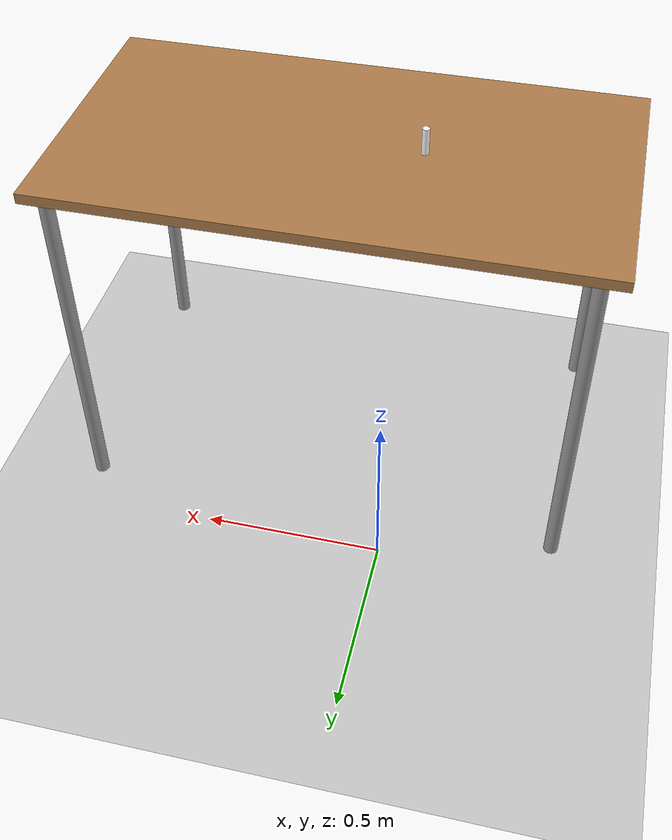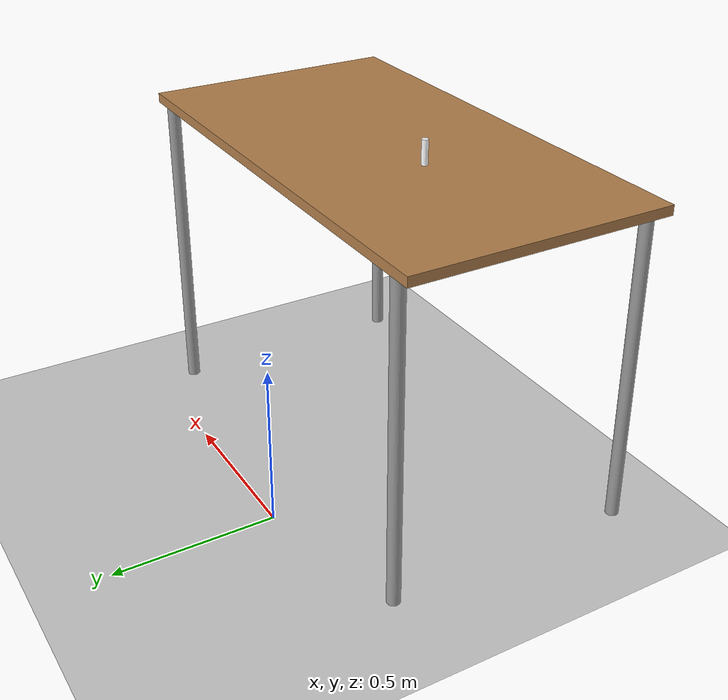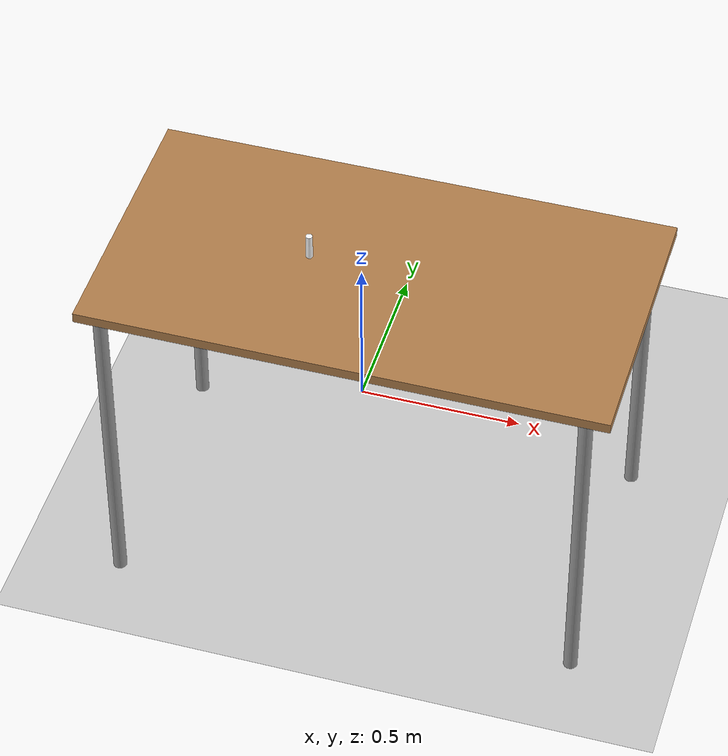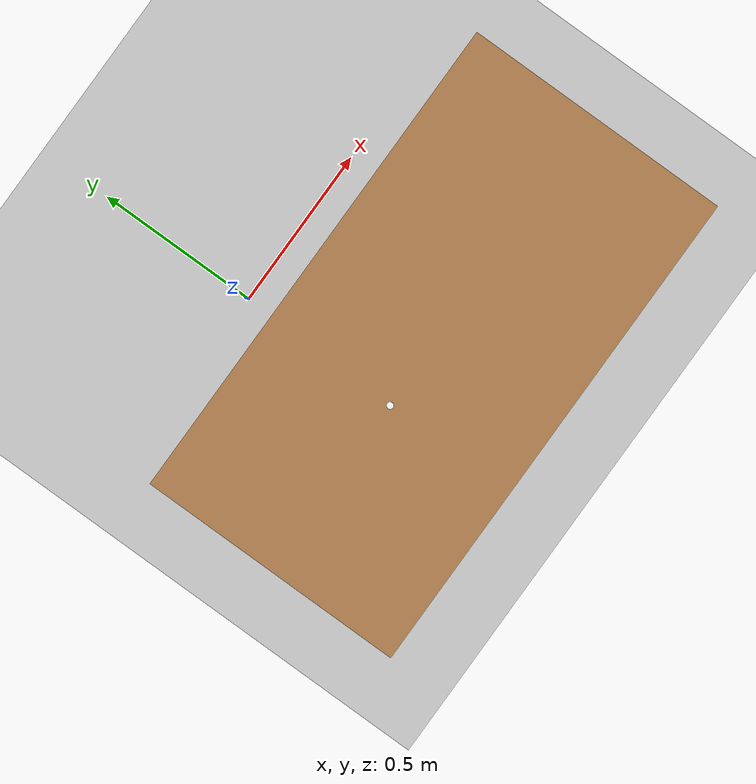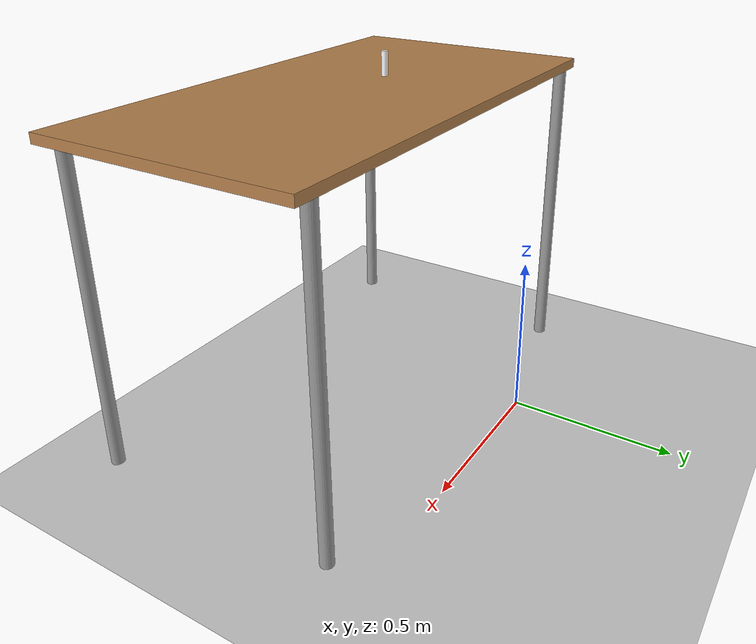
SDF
<sdf version="1.5">
<world name="default">
<include>
  <uri>model://ground_plane</uri>
</include>
<include>
  <uri>model://sun</uri>
</include>
<include>
  <uri>model://table</uri>
  <pose>0.2 -0.5 0.0 0 0 0</pose>
</include>
<include>
  <uri>model://wooden_peg</uri>
  <pose>0.0 -0.5 1.01 0 0 0</pose>
</include>
</world>
</sdf>

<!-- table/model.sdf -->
<sdf version="1.5">
  <model name="table">
    <static>true</static>
    <link name="link">
      <collision name="surface">
        <pose>0 0 1.0 0 0 0</pose>
        <geometry>
          <box>
            <size>1.5 0.8 0.03</size>
          </box>
        </geometry>
        <surface>
          <friction>
            <ode>
              <mu>0.6</mu>
              <mu2>0.6</mu2>
            </ode>
          </friction>
        </surface>
      </collision>
      <visual name="visual1">
        <pose>0 0 1.0 0 0 0</pose>
        <geometry>
          <box>
            <size>1.5 0.8 0.03</size>
          </box>
        </geometry>
        <material>
          <script>
            <uri>model://media/materials/scripts/gazebo.material</uri>
            <name>Gazebo/Wood</name>
          </script>
        </material>
      </visual>
      <collision name="front_left_leg">
        <pose>0.68 0.38 0.5 0 0 0</pose>
        <geometry>
          <cylinder>
            <radius>0.02</radius>
            <length>1.0</length>
          </cylinder>
        </geometry>
      </collision>
      <visual name="front_left_leg">
        <pose>0.68 0.38 0.5 0 0 0</pose>
        <geometry>
          <cylinder>
            <radius>0.02</radius>
            <length>1.0</length>
          </cylinder>
        </geometry>
        <material>
          <script>
            <uri>model://media/materials/scripts/gazebo.material</uri>
            <name>Gazebo/Grey</name>
          </script>
        </material>
      </visual>
      <collision name="front_right_leg">
        <pose>0.68 -0.38 0.5 0 0 0</pose>
        <geometry>
          <cylinder>
            <radius>0.02</radius>
            <length>1.0</length>
          </cylinder>
        </geometry>
      </collision>
      <visual name="front_right_leg">
        <pose>0.68 -0.38 0.5 0 0 0</pose>
        <geometry>
          <cylinder>
            <radius>0.02</radius>
            <length>1.0</length>
          </cylinder>
        </geometry>
        <material>
          <script>
            <uri>model://media/materials/scripts/gazebo.material</uri>
            <name>Gazebo/Grey</name>
          </script>
        </material>
      </visual>
      <collision name="back_right_leg">
        <pose>-0.68 -0.38 0.5 0 0 0</pose>
        <geometry>
          <cylinder>
            <radius>0.02</radius>
            <length>1.0</length>
          </cylinder>
        </geometry>
      </collision>
      <visual name="back_right_leg">
        <pose>-0.68 -0.38 0.5 0 0 0</pose>
        <geometry>
          <cylinder>
            <radius>0.02</radius>
            <length>1.0</length>
          </cylinder>
        </geometry>
        <material>
          <script>
            <uri>model://media/materials/scripts/gazebo.material</uri>
            <name>Gazebo/Grey</name>
          </script>
        </material>
      </visual>
      <collision name="back_left_leg">
        <pose>-0.68 0.38 0.5 0 0 0</pose>
        <geometry>
          <cylinder>
            <radius>0.02</radius>
            <length>1.0</length>
          </cylinder>
        </geometry>
      </collision>
      <visual name="back_left_leg">
        <pose>-0.68 0.38 0.5 0 0 0</pose>
        <geometry>
          <cylinder>
            <radius>0.02</radius>
            <length>1.0</length>
          </cylinder>
        </geometry>
        <material>
          <script>
            <uri>model://media/materials/scripts/gazebo.material</uri>
            <name>Gazebo/Grey</name>
          </script>
        </material>
      </visual>
    </link>
  </model>
</sdf>

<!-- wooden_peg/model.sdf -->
<sdf version="1.5">
  <model name="wooden_peg">
    <link name="link">
      <pose>0 0 0.04 0 0 0</pose>
      <inertial>
        <mass>0.0175</mass>
        <inertia>
          <ixx>9.749231770833334e-06</ixx>
          <ixy>0</ixy>
          <ixz>0</ixz>
          <iyy>9.749231770833334e-06</iyy>
          <iyz>0</iyz>
          <izz>8.317968750000001e-07</izz>
        </inertia>
      </inertial>

      <collision name="collision">
        <geometry>
          <cylinder>
            <radius> 0.00975 </radius>
            <length> 0.08 </length>
          </cylinder>
        </geometry>
        <surface>
          <contact>
            <!-- Red Pine coefficients for longitudinal axis of the wood
                 according to:
                 http://www.fpl.fs.fed.us/documnts/fplgtr/fplgtr113/ch04.pdf -->
            <poissons_ratio>0.347</poissons_ratio>
            <elastic_modulus>8.8e+09</elastic_modulus>
            <ode>
              <kp>100000</kp>
              <kd>100</kd>
              <max_vel>100.0</max_vel>
              <min_depth>0.001</min_depth>
            </ode>
          </contact>
          <friction>
            <torsional>
              <coefficient>1.0</coefficient>
              <use_patch_radius>0</use_patch_radius>
              <surface_radius>0.01</surface_radius>
            </torsional>
          </friction>
        </surface>
      </collision>

      <visual name="visual">
        <geometry>
          <cylinder>
            <radius> 0.00975 </radius>
            <length> 0.08 </length>
          </cylinder>
        </geometry>
        <material><diffuse>1 1 1 1</diffuse><specular>0.1 0.1 0.1 1</specular></material>
      </visual>

    </link>
  </model>
</sdf>
